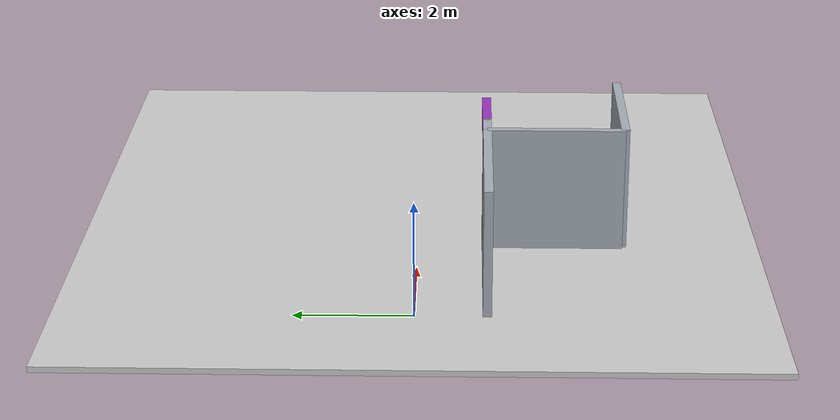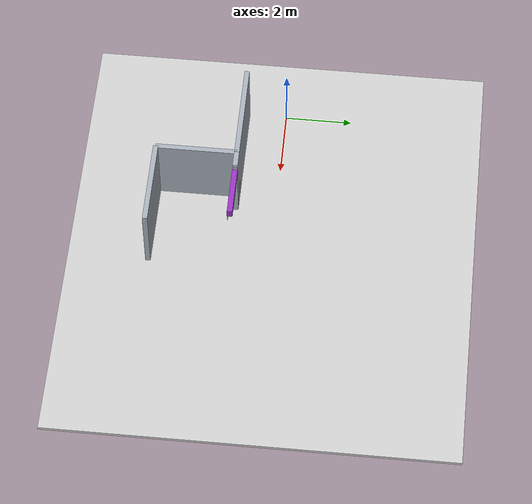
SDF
<sdf version="1.9">
 <world name="default">
  <model name="ground_plane">
   <static>true</static>
   <pose>4.75 0 -0.05 0 0 0</pose>
   <link name="body">
    <collision name="collision"><geometry><box><size>13.5 12 0.1</size></box></geometry></collision>
    <visual name="visual">
     <geometry><box><size>13.5 12 0.1</size></box></geometry>
     <material><ambient>0.8 0.8 0.8 1</ambient><diffuse>0.8 0.8 0.8 1</diffuse></material>
    </visual>
   </link>
  </model>
  <model name="hall_-1_1">
   <static>true</static>
   <pose>1.775 -1.2 1.1 0 0 0</pose>
   <link name="body">
    <collision name="collision"><geometry><box><size>3.55 0.15 2.2</size></box></geometry></collision>
    <visual name="visual">
     <geometry><box><size>3.55 0.15 2.2</size></box></geometry>
     <material><ambient>0.65 0.68 0.72 1</ambient><diffuse>0.65 0.68 0.72 1</diffuse></material>
    </visual>
   </link>
  </model>
  <model name="room_-1_1_-1">
   <static>true</static>
   <pose>3.0 -2.4 1.1 0 0 0</pose>
   <link name="body">
    <collision name="collision"><geometry><box><size>0.15 2.4 2.2</size></box></geometry></collision>
    <visual name="visual">
     <geometry><box><size>0.15 2.4 2.2</size></box></geometry>
     <material><ambient>0.65 0.68 0.72 1</ambient><diffuse>0.65 0.68 0.72 1</diffuse></material>
    </visual>
   </link>
  </model>
  <model name="room_end_-1_1">
   <static>true</static>
   <pose>4.3 -3.5999999999999996 1.1 0 0 0</pose>
   <link name="body">
    <collision name="collision"><geometry><box><size>2.6 0.15 2.2</size></box></geometry></collision>
    <visual name="visual">
     <geometry><box><size>2.6 0.15 2.2</size></box></geometry>
     <material><ambient>0.65 0.68 0.72 1</ambient><diffuse>0.65 0.68 0.72 1</diffuse></material>
    </visual>
   </link>
  </model>
  <model name="jamb_-1_1_-1">
   <static>true</static>
   <pose>3.275 -1.2 1.1 0 0 0</pose>
   <link name="body">
    <collision name="collision"><geometry><box><size>0.55 0.15 2.2</size></box></geometry></collision>
    <visual name="visual">
     <geometry><box><size>0.55 0.15 2.2</size></box></geometry>
     <material><ambient>0.65 0.68 0.72 1</ambient><diffuse>0.65 0.68 0.72 1</diffuse></material>
    </visual>
   </link>
  </model>
  <model name="r3geo_base_r010_right_1_lintel">
   <static>true</static>
   <pose>4.3 -1.2 1.95 0 0 0</pose>
   <link name="body">
    <collision name="collision"><geometry><box><size>1.5 0.16 0.25</size></box></geometry></collision>
    <visual name="visual">
     <geometry><box><size>1.5 0.16 0.25</size></box></geometry>
     <material><ambient>0.6 0.2 0.75 1</ambient><diffuse>0.6 0.2 0.75 1</diffuse></material>
    </visual>
   </link>
  </model>
  <model name="readable_r3geo_base_r010_right_1_entrance_room">
   <static>true</static>
   <pose>4.3 -1.3 1.43 0 0 0</pose>
   <link name="lettering">
    <visual name="backboard">
     <geometry><box><size>1.02 0.018 0.3</size></box></geometry>
     <material>
      <ambient>.015 .015 .015 1</ambient>
      <diffuse>.015 .015 .015 1</diffuse>
      <emissive>.015 .015 .015 1</emissive>
     </material>
     <cast_shadows>false</cast_shadows>
    </visual>
    <visual name="letter_0_0_1">
     <pose>-0.416 -0.014 0.078 0 0 0</pose>
     <geometry><box><size>0.024439999999999996 0.008 0.024439999999999996</size></box></geometry>
     <material>
      <ambient>.96 .96 .96 1</ambient>
      <diffuse>.96 .96 .96 1</diffuse>
      <emissive>.96 .96 .96 1</emissive>
     </material>
     <cast_shadows>false</cast_shadows>
    </visual>
    <visual name="letter_0_0_2">
     <pose>-0.39 -0.014 0.078 0 0 0</pose>
     <geometry><box><size>0.024439999999999996 0.008 0.024439999999999996</size></box></geometry>
     <material>
      <ambient>.96 .96 .96 1</ambient>
      <diffuse>.96 .96 .96 1</diffuse>
      <emissive>.96 .96 .96 1</emissive>
     </material>
     <cast_shadows>false</cast_shadows>
    </visual>
    <visual name="letter_0_0_3">
     <pose>-0.364 -0.014 0.078 0 0 0</pose>
     <geometry><box><size>0.024439999999999996 0.008 0.024439999999999996</size></box></geometry>
     <material>
      <ambient>.96 .96 .96 1</ambient>
      <diffuse>.96 .96 .96 1</diffuse>
      <emissive>.96 .96 .96 1</emissive>
     </material>
     <cast_shadows>false</cast_shadows>
    </visual>
    <visual name="letter_0_1_0">
     <pose>-0.442 -0.014 0.052 0 0 0</pose>
     <geometry><box><size>0.024439999999999996 0.008 0.024439999999999996</size></box></geometry>
     <material>
      <ambient>.96 .96 .96 1</ambient>
      <diffuse>.96 .96 .96 1</diffuse>
      <emissive>.96 .96 .96 1</emissive>
     </material>
     <cast_shadows>false</cast_shadows>
    </visual>
    <visual name="letter_0_1_4">
     <pose>-0.338 -0.014 0.052 0 0 0</pose>
     <geometry><box><size>0.024439999999999996 0.008 0.024439999999999996</size></box></geometry>
     <material>
      <ambient>.96 .96 .96 1</ambient>
      <diffuse>.96 .96 .96 1</diffuse>
      <emissive>.96 .96 .96 1</emissive>
     </material>
     <cast_shadows>false</cast_shadows>
    </visual>
    <visual name="letter_0_2_0">
     <pose>-0.442 -0.014 0.026 0 0 0</pose>
     <geometry><box><size>0.024439999999999996 0.008 0.024439999999999996</size></box></geometry>
     <material>
      <ambient>.96 .96 .96 1</ambient>
      <diffuse>.96 .96 .96 1</diffuse>
      <emissive>.96 .96 .96 1</emissive>
     </material>
     <cast_shadows>false</cast_shadows>
    </visual>
    <visual name="letter_0_2_4">
     <pose>-0.338 -0.014 0.026 0 0 0</pose>
     <geometry><box><size>0.024439999999999996 0.008 0.024439999999999996</size></box></geometry>
     <material>
      <ambient>.96 .96 .96 1</ambient>
      <diffuse>.96 .96 .96 1</diffuse>
      <emissive>.96 .96 .96 1</emissive>
     </material>
     <cast_shadows>false</cast_shadows>
    </visual>
    <visual name="letter_0_3_0">
     <pose>-0.442 -0.014 0 0 0 0</pose>
     <geometry><box><size>0.024439999999999996 0.008 0.024439999999999996</size></box></geometry>
     <material>
      <ambient>.96 .96 .96 1</ambient>
      <diffuse>.96 .96 .96 1</diffuse>
      <emissive>.96 .96 .96 1</emissive>
     </material>
     <cast_shadows>false</cast_shadows>
    </visual>
    <visual name="letter_0_3_4">
     <pose>-0.338 -0.014 0 0 0 0</pose>
     <geometry><box><size>0.024439999999999996 0.008 0.024439999999999996</size></box></geometry>
     <material>
      <ambient>.96 .96 .96 1</ambient>
      <diffuse>.96 .96 .96 1</diffuse>
      <emissive>.96 .96 .96 1</emissive>
     </material>
     <cast_shadows>false</cast_shadows>
    </visual>
    <visual name="letter_0_4_0">
     <pose>-0.442 -0.014 -0.026 0 0 0</pose>
     <geometry><box><size>0.024439999999999996 0.008 0.024439999999999996</size></box></geometry>
     <material>
      <ambient>.96 .96 .96 1</ambient>
      <diffuse>.96 .96 .96 1</diffuse>
      <emissive>.96 .96 .96 1</emissive>
     </material>
     <cast_shadows>false</cast_shadows>
    </visual>
    <visual name="letter_0_4_4">
     <pose>-0.338 -0.014 -0.026 0 0 0</pose>
     <geometry><box><size>0.024439999999999996 0.008 0.024439999999999996</size></box></geometry>
     <material>
      <ambient>.96 .96 .96 1</ambient>
      <diffuse>.96 .96 .96 1</diffuse>
      <emissive>.96 .96 .96 1</emissive>
     </material>
     <cast_shadows>false</cast_shadows>
    </visual>
    <visual name="letter_0_5_0">
     <pose>-0.442 -0.014 -0.052 0 0 0</pose>
     <geometry><box><size>0.024439999999999996 0.008 0.024439999999999996</size></box></geometry>
     <material>
      <ambient>.96 .96 .96 1</ambient>
      <diffuse>.96 .96 .96 1</diffuse>
      <emissive>.96 .96 .96 1</emissive>
     </material>
     <cast_shadows>false</cast_shadows>
    </visual>
    <visual name="letter_0_5_4">
     <pose>-0.338 -0.014 -0.052 0 0 0</pose>
     <geometry><box><size>0.024439999999999996 0.008 0.024439999999999996</size></box></geometry>
     <material>
      <ambient>.96 .96 .96 1</ambient>
      <diffuse>.96 .96 .96 1</diffuse>
      <emissive>.96 .96 .96 1</emissive>
     </material>
     <cast_shadows>false</cast_shadows>
    </visual>
    <visual name="letter_0_6_1">
     <pose>-0.416 -0.014 -0.078 0 0 0</pose>
     <geometry><box><size>0.024439999999999996 0.008 0.024439999999999996</size></box></geometry>
     <material>
      <ambient>.96 .96 .96 1</ambient>
      <diffuse>.96 .96 .96 1</diffuse>
      <emissive>.96 .96 .96 1</emissive>
     </material>
     <cast_shadows>false</cast_shadows>
    </visual>
    <visual name="letter_0_6_2">
     <pose>-0.39 -0.014 -0.078 0 0 0</pose>
     <geometry><box><size>0.024439999999999996 0.008 0.024439999999999996</size></box></geometry>
     <material>
      <ambient>.96 .96 .96 1</ambient>
      <diffuse>.96 .96 .96 1</diffuse>
      <emissive>.96 .96 .96 1</emissive>
     </material>
     <cast_shadows>false</cast_shadows>
    </visual>
    <visual name="letter_0_6_3">
     <pose>-0.364 -0.014 -0.078 0 0 0</pose>
     <geometry><box><size>0.024439999999999996 0.008 0.024439999999999996</size></box></geometry>
     <material>
      <ambient>.96 .96 .96 1</ambient>
      <diffuse>.96 .96 .96 1</diffuse>
      <emissive>.96 .96 .96 1</emissive>
     </material>
     <cast_shadows>false</cast_shadows>
    </visual>
    <visual name="letter_1_0_0">
     <pose>-0.286 -0.014 0.078 0 0 0</pose>
     <geometry><box><size>0.024439999999999996 0.008 0.024439999999999996</size></box></geometry>
     <material>
      <ambient>.96 .96 .96 1</ambient>
      <diffuse>.96 .96 .96 1</diffuse>
      <emissive>.96 .96 .96 1</emissive>
     </material>
     <cast_shadows>false</cast_shadows>
    </visual>
    <visual name="letter_1_0_1">
     <pose>-0.26 -0.014 0.078 0 0 0</pose>
     <geometry><box><size>0.024439999999999996 0.008 0.024439999999999996</size></box></geometry>
     <material>
      <ambient>.96 .96 .96 1</ambient>
      <diffuse>.96 .96 .96 1</diffuse>
      <emissive>.96 .96 .96 1</emissive>
     </material>
     <cast_shadows>false</cast_shadows>
    </visual>
    <visual name="letter_1_0_2">
     <pose>-0.234 -0.014 0.078 0 0 0</pose>
     <geometry><box><size>0.024439999999999996 0.008 0.024439999999999996</size></box></geometry>
     <material>
      <ambient>.96 .96 .96 1</ambient>
      <diffuse>.96 .96 .96 1</diffuse>
      <emissive>.96 .96 .96 1</emissive>
     </material>
     <cast_shadows>false</cast_shadows>
    </visual>
    <visual name="letter_1_0_3">
     <pose>-0.208 -0.014 0.078 0 0 0</pose>
     <geometry><box><size>0.024439999999999996 0.008 0.024439999999999996</size></box></geometry>
     <material>
      <ambient>.96 .96 .96 1</ambient>
      <diffuse>.96 .96 .96 1</diffuse>
      <emissive>.96 .96 .96 1</emissive>
     </material>
     <cast_shadows>false</cast_shadows>
    </visual>
    <visual name="letter_1_0_4">
     <pose>-0.182 -0.014 0.078 0 0 0</pose>
     <geometry><box><size>0.024439999999999996 0.008 0.024439999999999996</size></box></geometry>
     <material>
      <ambient>.96 .96 .96 1</ambient>
      <diffuse>.96 .96 .96 1</diffuse>
      <emissive>.96 .96 .96 1</emissive>
     </material>
     <cast_shadows>false</cast_shadows>
    </visual>
    <visual name="letter_1_1_0">
     <pose>-0.286 -0.014 0.052 0 0 0</pose>
     <geometry><box><size>0.024439999999999996 0.008 0.024439999999999996</size></box></geometry>
     <material>
      <ambient>.96 .96 .96 1</ambient>
      <diffuse>.96 .96 .96 1</diffuse>
      <emissive>.96 .96 .96 1</emissive>
     </material>
     <cast_shadows>false</cast_shadows>
    </visual>
    <visual name="letter_1_2_0">
     <pose>-0.286 -0.014 0.026 0 0 0</pose>
     <geometry><box><size>0.024439999999999996 0.008 0.024439999999999996</size></box></geometry>
     <material>
      <ambient>.96 .96 .96 1</ambient>
      <diffuse>.96 .96 .96 1</diffuse>
      <emissive>.96 .96 .96 1</emissive>
     </material>
     <cast_shadows>false</cast_shadows>
    </visual>
    <visual name="letter_1_3_0">
     <pose>-0.286 -0.014 0 0 0 0</pose>
     <geometry><box><size>0.024439999999999996 0.008 0.024439999999999996</size></box></geometry>
     <material>
      <ambient>.96 .96 .96 1</ambient>
      <diffuse>.96 .96 .96 1</diffuse>
      <emissive>.96 .96 .96 1</emissive>
     </material>
     <cast_shadows>false</cast_shadows>
    </visual>
    <visual name="letter_1_3_1">
     <pose>-0.26 -0.014 0 0 0 0</pose>
     <geometry><box><size>0.024439999999999996 0.008 0.024439999999999996</size></box></geometry>
     <material>
      <ambient>.96 .96 .96 1</ambient>
      <diffuse>.96 .96 .96 1</diffuse>
      <emissive>.96 .96 .96 1</emissive>
     </material>
     <cast_shadows>false</cast_shadows>
    </visual>
    <visual name="letter_1_3_2">
     <pose>-0.234 -0.014 0 0 0 0</pose>
     <geometry><box><size>0.024439999999999996 0.008 0.024439999999999996</size></box></geometry>
     <material>
      <ambient>.96 .96 .96 1</ambient>
      <diffuse>.96 .96 .96 1</diffuse>
      <emissive>.96 .96 .96 1</emissive>
     </material>
     <cast_shadows>false</cast_shadows>
    </visual>
    <visual name="letter_1_3_3">
     <pose>-0.208 -0.014 0 0 0 0</pose>
     <geometry><box><size>0.024439999999999996 0.008 0.024439999999999996</size></box></geometry>
     <material>
      <ambient>.96 .96 .96 1</ambient>
      <diffuse>.96 .96 .96 1</diffuse>
      <emissive>.96 .96 .96 1</emissive>
     </material>
     <cast_shadows>false</cast_shadows>
    </visual>
    <visual name="letter_1_4_0">
     <pose>-0.286 -0.014 -0.026 0 0 0</pose>
     <geometry><box><size>0.024439999999999996 0.008 0.024439999999999996</size></box></geometry>
     <material>
      <ambient>.96 .96 .96 1</ambient>
      <diffuse>.96 .96 .96 1</diffuse>
      <emissive>.96 .96 .96 1</emissive>
     </material>
     <cast_shadows>false</cast_shadows>
    </visual>
    <visual name="letter_1_5_0">
     <pose>-0.286 -0.014 -0.052 0 0 0</pose>
     <geometry><box><size>0.024439999999999996 0.008 0.024439999999999996</size></box></geometry>
     <material>
      <ambient>.96 .96 .96 1</ambient>
      <diffuse>.96 .96 .96 1</diffuse>
      <emissive>.96 .96 .96 1</emissive>
     </material>
     <cast_shadows>false</cast_shadows>
    </visual>
    <visual name="letter_1_6_0">
     <pose>-0.286 -0.014 -0.078 0 0 0</pose>
     <geometry><box><size>0.024439999999999996 0.008 0.024439999999999996</size></box></geometry>
     <material>
      <ambient>.96 .96 .96 1</ambient>
      <diffuse>.96 .96 .96 1</diffuse>
      <emissive>.96 .96 .96 1</emissive>
     </material>
     <cast_shadows>false</cast_shadows>
    </visual>
    <visual name="letter_2_0_0">
     <pose>-0.13 -0.014 0.078 0 0 0</pose>
     <geometry><box><size>0.024439999999999996 0.008 0.024439999999999996</size></box></geometry>
     <material>
      <ambient>.96 .96 .96 1</ambient>
      <diffuse>.96 .96 .96 1</diffuse>
      <emissive>.96 .96 .96 1</emissive>
     </material>
     <cast_shadows>false</cast_shadows>
    </visual>
    <visual name="letter_2_0_1">
     <pose>-0.104 -0.014 0.078 0 0 0</pose>
     <geometry><box><size>0.024439999999999996 0.008 0.024439999999999996</size></box></geometry>
     <material>
      <ambient>.96 .96 .96 1</ambient>
      <diffuse>.96 .96 .96 1</diffuse>
      <emissive>.96 .96 .96 1</emissive>
     </material>
     <cast_shadows>false</cast_shadows>
    </visual>
    <visual name="letter_2_0_2">
     <pose>-0.078 -0.014 0.078 0 0 0</pose>
     <geometry><box><size>0.024439999999999996 0.008 0.024439999999999996</size></box></geometry>
     <material>
      <ambient>.96 .96 .96 1</ambient>
      <diffuse>.96 .96 .96 1</diffuse>
      <emissive>.96 .96 .96 1</emissive>
     </material>
     <cast_shadows>false</cast_shadows>
    </visual>
    <visual name="letter_2_0_3">
     <pose>-0.052 -0.014 0.078 0 0 0</pose>
     <geometry><box><size>0.024439999999999996 0.008 0.024439999999999996</size></box></geometry>
     <material>
      <ambient>.96 .96 .96 1</ambient>
      <diffuse>.96 .96 .96 1</diffuse>
      <emissive>.96 .96 .96 1</emissive>
     </material>
     <cast_shadows>false</cast_shadows>
    </visual>
    <visual name="letter_2_0_4">
     <pose>-0.026 -0.014 0.078 0 0 0</pose>
     <geometry><box><size>0.024439999999999996 0.008 0.024439999999999996</size></box></geometry>
     <material>
      <ambient>.96 .96 .96 1</ambient>
      <diffuse>.96 .96 .96 1</diffuse>
      <emissive>.96 .96 .96 1</emissive>
     </material>
     <cast_shadows>false</cast_shadows>
    </visual>
    <visual name="letter_2_1_0">
     <pose>-0.13 -0.014 0.052 0 0 0</pose>
     <geometry><box><size>0.024439999999999996 0.008 0.024439999999999996</size></box></geometry>
     <material>
      <ambient>.96 .96 .96 1</ambient>
      <diffuse>.96 .96 .96 1</diffuse>
      <emissive>.96 .96 .96 1</emissive>
     </material>
     <cast_shadows>false</cast_shadows>
    </visual>
    <visual name="letter_2_2_0">
     <pose>-0.13 -0.014 0.026 0 0 0</pose>
     <geometry><box><size>0.024439999999999996 0.008 0.024439999999999996</size></box></geometry>
     <material>
      <ambient>.96 .96 .96 1</ambient>
      <diffuse>.96 .96 .96 1</diffuse>
      <emissive>.96 .96 .96 1</emissive>
     </material>
     <cast_shadows>false</cast_shadows>
    </visual>
    <visual name="letter_2_3_0">
     <pose>-0.13 -0.014 0 0 0 0</pose>
     <geometry><box><size>0.024439999999999996 0.008 0.024439999999999996</size></box></geometry>
     <material>
      <ambient>.96 .96 .96 1</ambient>
      <diffuse>.96 .96 .96 1</diffuse>
      <emissive>.96 .96 .96 1</emissive>
     </material>
     <cast_shadows>false</cast_shadows>
    </visual>
    <visual name="letter_2_3_1">
     <pose>-0.104 -0.014 0 0 0 0</pose>
     <geometry><box><size>0.024439999999999996 0.008 0.024439999999999996</size></box></geometry>
     <material>
      <ambient>.96 .96 .96 1</ambient>
      <diffuse>.96 .96 .96 1</diffuse>
      <emissive>.96 .96 .96 1</emissive>
     </material>
     <cast_shadows>false</cast_shadows>
    </visual>
    <visual name="letter_2_3_2">
     <pose>-0.078 -0.014 0 0 0 0</pose>
     <geometry><box><size>0.024439999999999996 0.008 0.024439999999999996</size></box></geometry>
     <material>
      <ambient>.96 .96 .96 1</ambient>
      <diffuse>.96 .96 .96 1</diffuse>
      <emissive>.96 .96 .96 1</emissive>
     </material>
     <cast_shadows>false</cast_shadows>
    </visual>
    <visual name="letter_2_3_3">
     <pose>-0.052 -0.014 0 0 0 0</pose>
     <geometry><box><size>0.024439999999999996 0.008 0.024439999999999996</size></box></geometry>
     <material>
      <ambient>.96 .96 .96 1</ambient>
      <diffuse>.96 .96 .96 1</diffuse>
      <emissive>.96 .96 .96 1</emissive>
     </material>
     <cast_shadows>false</cast_shadows>
    </visual>
    <visual name="letter_2_4_0">
     <pose>-0.13 -0.014 -0.026 0 0 0</pose>
     <geometry><box><size>0.024439999999999996 0.008 0.024439999999999996</size></box></geometry>
     <material>
      <ambient>.96 .96 .96 1</ambient>
      <diffuse>.96 .96 .96 1</diffuse>
      <emissive>.96 .96 .96 1</emissive>
     </material>
     <cast_shadows>false</cast_shadows>
    </visual>
    <visual name="letter_2_5_0">
     <pose>-0.13 -0.014 -0.052 0 0 0</pose>
     <geometry><box><size>0.024439999999999996 0.008 0.024439999999999996</size></box></geometry>
     <material>
      <ambient>.96 .96 .96 1</ambient>
      <diffuse>.96 .96 .96 1</diffuse>
      <emissive>.96 .96 .96 1</emissive>
     </material>
     <cast_shadows>false</cast_shadows>
    </visual>
    <visual name="letter_2_6_0">
     <pose>-0.13 -0.014 -0.078 0 0 0</pose>
     <geometry><box><size>0.024439999999999996 0.008 0.024439999999999996</size></box></geometry>
     <material>
      <ambient>.96 .96 .96 1</ambient>
      <diffuse>.96 .96 .96 1</diffuse>
      <emissive>.96 .96 .96 1</emissive>
     </material>
     <cast_shadows>false</cast_shadows>
    </visual>
    <visual name="letter_3_0_0">
     <pose>0.026 -0.014 0.078 0 0 0</pose>
     <geometry><box><size>0.024439999999999996 0.008 0.024439999999999996</size></box></geometry>
     <material>
      <ambient>.96 .96 .96 1</ambient>
      <diffuse>.96 .96 .96 1</diffuse>
      <emissive>.96 .96 .96 1</emissive>
     </material>
     <cast_shadows>false</cast_shadows>
    </visual>
    <visual name="letter_3_0_1">
     <pose>0.052 -0.014 0.078 0 0 0</pose>
     <geometry><box><size>0.024439999999999996 0.008 0.024439999999999996</size></box></geometry>
     <material>
      <ambient>.96 .96 .96 1</ambient>
      <diffuse>.96 .96 .96 1</diffuse>
      <emissive>.96 .96 .96 1</emissive>
     </material>
     <cast_shadows>false</cast_shadows>
    </visual>
    <visual name="letter_3_0_2">
     <pose>0.078 -0.014 0.078 0 0 0</pose>
     <geometry><box><size>0.024439999999999996 0.008 0.024439999999999996</size></box></geometry>
     <material>
      <ambient>.96 .96 .96 1</ambient>
      <diffuse>.96 .96 .96 1</diffuse>
      <emissive>.96 .96 .96 1</emissive>
     </material>
     <cast_shadows>false</cast_shadows>
    </visual>
    <visual name="letter_3_0_3">
     <pose>0.104 -0.014 0.078 0 0 0</pose>
     <geometry><box><size>0.024439999999999996 0.008 0.024439999999999996</size></box></geometry>
     <material>
      <ambient>.96 .96 .96 1</ambient>
      <diffuse>.96 .96 .96 1</diffuse>
      <emissive>.96 .96 .96 1</emissive>
     </material>
     <cast_shadows>false</cast_shadows>
    </visual>
    <visual name="letter_3_0_4">
     <pose>0.13 -0.014 0.078 0 0 0</pose>
     <geometry><box><size>0.024439999999999996 0.008 0.024439999999999996</size></box></geometry>
     <material>
      <ambient>.96 .96 .96 1</ambient>
      <diffuse>.96 .96 .96 1</diffuse>
      <emissive>.96 .96 .96 1</emissive>
     </material>
     <cast_shadows>false</cast_shadows>
    </visual>
    <visual name="letter_3_1_2">
     <pose>0.078 -0.014 0.052 0 0 0</pose>
     <geometry><box><size>0.024439999999999996 0.008 0.024439999999999996</size></box></geometry>
     <material>
      <ambient>.96 .96 .96 1</ambient>
      <diffuse>.96 .96 .96 1</diffuse>
      <emissive>.96 .96 .96 1</emissive>
     </material>
     <cast_shadows>false</cast_shadows>
    </visual>
    <visual name="letter_3_2_2">
     <pose>0.078 -0.014 0.026 0 0 0</pose>
     <geometry><box><size>0.024439999999999996 0.008 0.024439999999999996</size></box></geometry>
     <material>
      <ambient>.96 .96 .96 1</ambient>
      <diffuse>.96 .96 .96 1</diffuse>
      <emissive>.96 .96 .96 1</emissive>
     </material>
     <cast_shadows>false</cast_shadows>
    </visual>
    <visual name="letter_3_3_2">
     <pose>0.078 -0.014 0 0 0 0</pose>
     <geometry><box><size>0.024439999999999996 0.008 0.024439999999999996</size></box></geometry>
     <material>
      <ambient>.96 .96 .96 1</ambient>
      <diffuse>.96 .96 .96 1</diffuse>
      <emissive>.96 .96 .96 1</emissive>
     </material>
     <cast_shadows>false</cast_shadows>
    </visual>
    <visual name="letter_3_4_2">
     <pose>0.078 -0.014 -0.026 0 0 0</pose>
     <geometry><box><size>0.024439999999999996 0.008 0.024439999999999996</size></box></geometry>
     <material>
      <ambient>.96 .96 .96 1</ambient>
      <diffuse>.96 .96 .96 1</diffuse>
      <emissive>.96 .96 .96 1</emissive>
     </material>
     <cast_shadows>false</cast_shadows>
    </visual>
    <visual name="letter_3_5_2">
     <pose>0.078 -0.014 -0.052 0 0 0</pose>
     <geometry><box><size>0.024439999999999996 0.008 0.024439999999999996</size></box></geometry>
     <material>
      <ambient>.96 .96 .96 1</ambient>
      <diffuse>.96 .96 .96 1</diffuse>
      <emissive>.96 .96 .96 1</emissive>
     </material>
     <cast_shadows>false</cast_shadows>
    </visual>
    <visual name="letter_3_6_0">
     <pose>0.026 -0.014 -0.078 0 0 0</pose>
     <geometry><box><size>0.024439999999999996 0.008 0.024439999999999996</size></box></geometry>
     <material>
      <ambient>.96 .96 .96 1</ambient>
      <diffuse>.96 .96 .96 1</diffuse>
      <emissive>.96 .96 .96 1</emissive>
     </material>
     <cast_shadows>false</cast_shadows>
    </visual>
    <visual name="letter_3_6_1">
     <pose>0.052 -0.014 -0.078 0 0 0</pose>
     <geometry><box><size>0.024439999999999996 0.008 0.024439999999999996</size></box></geometry>
     <material>
      <ambient>.96 .96 .96 1</ambient>
      <diffuse>.96 .96 .96 1</diffuse>
      <emissive>.96 .96 .96 1</emissive>
     </material>
     <cast_shadows>false</cast_shadows>
    </visual>
    <visual name="letter_3_6_2">
     <pose>0.078 -0.014 -0.078 0 0 0</pose>
     <geometry><box><size>0.024439999999999996 0.008 0.024439999999999996</size></box></geometry>
     <material>
      <ambient>.96 .96 .96 1</ambient>
      <diffuse>.96 .96 .96 1</diffuse>
      <emissive>.96 .96 .96 1</emissive>
     </material>
     <cast_shadows>false</cast_shadows>
    </visual>
    <visual name="letter_3_6_3">
     <pose>0.104 -0.014 -0.078 0 0 0</pose>
     <geometry><box><size>0.024439999999999996 0.008 0.024439999999999996</size></box></geometry>
     <material>
      <ambient>.96 .96 .96 1</ambient>
      <diffuse>.96 .96 .96 1</diffuse>
      <emissive>.96 .96 .96 1</emissive>
     </material>
     <cast_shadows>false</cast_shadows>
    </visual>
    <visual name="letter_3_6_4">
     <pose>0.13 -0.014 -0.078 0 0 0</pose>
     <geometry><box><size>0.024439999999999996 0.008 0.024439999999999996</size></box></geometry>
     <material>
      <ambient>.96 .96 .96 1</ambient>
      <diffuse>.96 .96 .96 1</diffuse>
      <emissive>.96 .96 .96 1</emissive>
     </material>
     <cast_shadows>false</cast_shadows>
    </visual>
    <visual name="letter_4_0_1">
     <pose>0.208 -0.014 0.078 0 0 0</pose>
     <geometry><box><size>0.024439999999999996 0.008 0.024439999999999996</size></box></geometry>
     <material>
      <ambient>.96 .96 .96 1</ambient>
      <diffuse>.96 .96 .96 1</diffuse>
      <emissive>.96 .96 .96 1</emissive>
     </material>
     <cast_shadows>false</cast_shadows>
    </visual>
    <visual name="letter_4_0_2">
     <pose>0.234 -0.014 0.078 0 0 0</pose>
     <geometry><box><size>0.024439999999999996 0.008 0.024439999999999996</size></box></geometry>
     <material>
      <ambient>.96 .96 .96 1</ambient>
      <diffuse>.96 .96 .96 1</diffuse>
      <emissive>.96 .96 .96 1</emissive>
     </material>
     <cast_shadows>false</cast_shadows>
    </visual>
    <visual name="letter_4_0_3">
     <pose>0.26 -0.014 0.078 0 0 0</pose>
     <geometry><box><size>0.024439999999999996 0.008 0.024439999999999996</size></box></geometry>
     <material>
      <ambient>.96 .96 .96 1</ambient>
      <diffuse>.96 .96 .96 1</diffuse>
      <emissive>.96 .96 .96 1</emissive>
     </material>
     <cast_shadows>false</cast_shadows>
    </visual>
    <visual name="letter_4_0_4">
     <pose>0.286 -0.014 0.078 0 0 0</pose>
     <geometry><box><size>0.024439999999999996 0.008 0.024439999999999996</size></box></geometry>
     <material>
      <ambient>.96 .96 .96 1</ambient>
      <diffuse>.96 .96 .96 1</diffuse>
      <emissive>.96 .96 .96 1</emissive>
     </material>
     <cast_shadows>false</cast_shadows>
    </visual>
    <visual name="letter_4_1_0">
     <pose>0.182 -0.014 0.052 0 0 0</pose>
     <geometry><box><size>0.024439999999999996 0.008 0.024439999999999996</size></box></geometry>
     <material>
      <ambient>.96 .96 .96 1</ambient>
      <diffuse>.96 .96 .96 1</diffuse>
      <emissive>.96 .96 .96 1</emissive>
     </material>
     <cast_shadows>false</cast_shadows>
    </visual>
    <visual name="letter_4_2_0">
     <pose>0.182 -0.014 0.026 0 0 0</pose>
     <geometry><box><size>0.024439999999999996 0.008 0.024439999999999996</size></box></geometry>
     <material>
      <ambient>.96 .96 .96 1</ambient>
      <diffuse>.96 .96 .96 1</diffuse>
      <emissive>.96 .96 .96 1</emissive>
     </material>
     <cast_shadows>false</cast_shadows>
    </visual>
    <visual name="letter_4_3_0">
     <pose>0.182 -0.014 0 0 0 0</pose>
     <geometry><box><size>0.024439999999999996 0.008 0.024439999999999996</size></box></geometry>
     <material>
      <ambient>.96 .96 .96 1</ambient>
      <diffuse>.96 .96 .96 1</diffuse>
      <emissive>.96 .96 .96 1</emissive>
     </material>
     <cast_shadows>false</cast_shadows>
    </visual>
    <visual name="letter_4_4_0">
     <pose>0.182 -0.014 -0.026 0 0 0</pose>
     <geometry><box><size>0.024439999999999996 0.008 0.024439999999999996</size></box></geometry>
     <material>
      <ambient>.96 .96 .96 1</ambient>
      <diffuse>.96 .96 .96 1</diffuse>
      <emissive>.96 .96 .96 1</emissive>
     </material>
     <cast_shadows>false</cast_shadows>
    </visual>
    <visual name="letter_4_5_0">
     <pose>0.182 -0.014 -0.052 0 0 0</pose>
     <geometry><box><size>0.024439999999999996 0.008 0.024439999999999996</size></box></geometry>
     <material>
      <ambient>.96 .96 .96 1</ambient>
      <diffuse>.96 .96 .96 1</diffuse>
      <emissive>.96 .96 .96 1</emissive>
     </material>
     <cast_shadows>false</cast_shadows>
    </visual>
    <visual name="letter_4_6_1">
     <pose>0.208 -0.014 -0.078 0 0 0</pose>
     <geometry><box><size>0.024439999999999996 0.008 0.024439999999999996</size></box></geometry>
     <material>
      <ambient>.96 .96 .96 1</ambient>
      <diffuse>.96 .96 .96 1</diffuse>
      <emissive>.96 .96 .96 1</emissive>
     </material>
     <cast_shadows>false</cast_shadows>
    </visual>
    <visual name="letter_4_6_2">
     <pose>0.234 -0.014 -0.078 0 0 0</pose>
     <geometry><box><size>0.024439999999999996 0.008 0.024439999999999996</size></box></geometry>
     <material>
      <ambient>.96 .96 .96 1</ambient>
      <diffuse>.96 .96 .96 1</diffuse>
      <emissive>.96 .96 .96 1</emissive>
     </material>
     <cast_shadows>false</cast_shadows>
    </visual>
    <visual name="letter_4_6_3">
     <pose>0.26 -0.014 -0.078 0 0 0</pose>
     <geometry><box><size>0.024439999999999996 0.008 0.024439999999999996</size></box></geometry>
     <material>
      <ambient>.96 .96 .96 1</ambient>
      <diffuse>.96 .96 .96 1</diffuse>
      <emissive>.96 .96 .96 1</emissive>
     </material>
     <cast_shadows>false</cast_shadows>
    </visual>
    <visual name="letter_4_6_4">
     <pose>0.286 -0.014 -0.078 0 0 0</pose>
     <geometry><box><size>0.024439999999999996 0.008 0.024439999999999996</size></box></geometry>
     <material>
      <ambient>.96 .96 .96 1</ambient>
      <diffuse>.96 .96 .96 1</diffuse>
      <emissive>.96 .96 .96 1</emissive>
     </material>
     <cast_shadows>false</cast_shadows>
    </visual>
    <visual name="letter_5_0_0">
     <pose>0.338 -0.014 0.078 0 0 0</pose>
     <geometry><box><size>0.024439999999999996 0.008 0.024439999999999996</size></box></geometry>
     <material>
      <ambient>.96 .96 .96 1</ambient>
      <diffuse>.96 .96 .96 1</diffuse>
      <emissive>.96 .96 .96 1</emissive>
     </material>
     <cast_shadows>false</cast_shadows>
    </visual>
    <visual name="letter_5_0_1">
     <pose>0.364 -0.014 0.078 0 0 0</pose>
     <geometry><box><size>0.024439999999999996 0.008 0.024439999999999996</size></box></geometry>
     <material>
      <ambient>.96 .96 .96 1</ambient>
      <diffuse>.96 .96 .96 1</diffuse>
      <emissive>.96 .96 .96 1</emissive>
     </material>
     <cast_shadows>false</cast_shadows>
    </visual>
    <visual name="letter_5_0_2">
     <pose>0.39 -0.014 0.078 0 0 0</pose>
     <geometry><box><size>0.024439999999999996 0.008 0.024439999999999996</size></box></geometry>
     <material>
      <ambient>.96 .96 .96 1</ambient>
      <diffuse>.96 .96 .96 1</diffuse>
      <emissive>.96 .96 .96 1</emissive>
     </material>
     <cast_shadows>false</cast_shadows>
    </visual>
    <visual name="letter_5_0_3">
     <pose>0.416 -0.014 0.078 0 0 0</pose>
     <geometry><box><size>0.024439999999999996 0.008 0.024439999999999996</size></box></geometry>
     <material>
      <ambient>.96 .96 .96 1</ambient>
      <diffuse>.96 .96 .96 1</diffuse>
      <emissive>.96 .96 .96 1</emissive>
     </material>
     <cast_shadows>false</cast_shadows>
    </visual>
    <visual name="letter_5_0_4">
     <pose>0.442 -0.014 0.078 0 0 0</pose>
     <geometry><box><size>0.024439999999999996 0.008 0.024439999999999996</size></box></geometry>
     <material>
      <ambient>.96 .96 .96 1</ambient>
      <diffuse>.96 .96 .96 1</diffuse>
      <emissive>.96 .96 .96 1</emissive>
     </material>
     <cast_shadows>false</cast_shadows>
    </visual>
    <visual name="letter_5_1_0">
     <pose>0.338 -0.014 0.052 0 0 0</pose>
     <geometry><box><size>0.024439999999999996 0.008 0.024439999999999996</size></box></geometry>
     <material>
      <ambient>.96 .96 .96 1</ambient>
      <diffuse>.96 .96 .96 1</diffuse>
      <emissive>.96 .96 .96 1</emissive>
     </material>
     <cast_shadows>false</cast_shadows>
    </visual>
    <visual name="letter_5_2_0">
     <pose>0.338 -0.014 0.026 0 0 0</pose>
     <geometry><box><size>0.024439999999999996 0.008 0.024439999999999996</size></box></geometry>
     <material>
      <ambient>.96 .96 .96 1</ambient>
      <diffuse>.96 .96 .96 1</diffuse>
      <emissive>.96 .96 .96 1</emissive>
     </material>
     <cast_shadows>false</cast_shadows>
    </visual>
    <visual name="letter_5_3_0">
     <pose>0.338 -0.014 0 0 0 0</pose>
     <geometry><box><size>0.024439999999999996 0.008 0.024439999999999996</size></box></geometry>
     <material>
      <ambient>.96 .96 .96 1</ambient>
      <diffuse>.96 .96 .96 1</diffuse>
      <emissive>.96 .96 .96 1</emissive>
     </material>
     <cast_shadows>false</cast_shadows>
    </visual>
    <visual name="letter_5_3_1">
     <pose>0.364 -0.014 0 0 0 0</pose>
     <geometry><box><size>0.024439999999999996 0.008 0.024439999999999996</size></box></geometry>
     <material>
      <ambient>.96 .96 .96 1</ambient>
      <diffuse>.96 .96 .96 1</diffuse>
      <emissive>.96 .96 .96 1</emissive>
     </material>
     <cast_shadows>false</cast_shadows>
    </visual>
    <visual name="letter_5_3_2">
     <pose>0.39 -0.014 0 0 0 0</pose>
     <geometry><box><size>0.024439999999999996 0.008 0.024439999999999996</size></box></geometry>
     <material>
      <ambient>.96 .96 .96 1</ambient>
      <diffuse>.96 .96 .96 1</diffuse>
      <emissive>.96 .96 .96 1</emissive>
     </material>
     <cast_shadows>false</cast_shadows>
    </visual>
    <visual name="letter_5_3_3">
     <pose>0.416 -0.014 0 0 0 0</pose>
     <geometry><box><size>0.024439999999999996 0.008 0.024439999999999996</size></box></geometry>
     <material>
      <ambient>.96 .96 .96 1</ambient>
      <diffuse>.96 .96 .96 1</diffuse>
      <emissive>.96 .96 .96 1</emissive>
     </material>
     <cast_shadows>false</cast_shadows>
    </visual>
    <visual name="letter_5_4_0">
     <pose>0.338 -0.014 -0.026 0 0 0</pose>
     <geometry><box><size>0.024439999999999996 0.008 0.024439999999999996</size></box></geometry>
     <material>
      <ambient>.96 .96 .96 1</ambient>
      <diffuse>.96 .96 .96 1</diffuse>
      <emissive>.96 .96 .96 1</emissive>
     </material>
     <cast_shadows>false</cast_shadows>
    </visual>
    <visual name="letter_5_5_0">
     <pose>0.338 -0.014 -0.052 0 0 0</pose>
     <geometry><box><size>0.024439999999999996 0.008 0.024439999999999996</size></box></geometry>
     <material>
      <ambient>.96 .96 .96 1</ambient>
      <diffuse>.96 .96 .96 1</diffuse>
      <emissive>.96 .96 .96 1</emissive>
     </material>
     <cast_shadows>false</cast_shadows>
    </visual>
    <visual name="letter_5_6_0">
     <pose>0.338 -0.014 -0.078 0 0 0</pose>
     <geometry><box><size>0.024439999999999996 0.008 0.024439999999999996</size></box></geometry>
     <material>
      <ambient>.96 .96 .96 1</ambient>
      <diffuse>.96 .96 .96 1</diffuse>
      <emissive>.96 .96 .96 1</emissive>
     </material>
     <cast_shadows>false</cast_shadows>
    </visual>
    <visual name="letter_5_6_1">
     <pose>0.364 -0.014 -0.078 0 0 0</pose>
     <geometry><box><size>0.024439999999999996 0.008 0.024439999999999996</size></box></geometry>
     <material>
      <ambient>.96 .96 .96 1</ambient>
      <diffuse>.96 .96 .96 1</diffuse>
      <emissive>.96 .96 .96 1</emissive>
     </material>
     <cast_shadows>false</cast_shadows>
    </visual>
    <visual name="letter_5_6_2">
     <pose>0.39 -0.014 -0.078 0 0 0</pose>
     <geometry><box><size>0.024439999999999996 0.008 0.024439999999999996</size></box></geometry>
     <material>
      <ambient>.96 .96 .96 1</ambient>
      <diffuse>.96 .96 .96 1</diffuse>
      <emissive>.96 .96 .96 1</emissive>
     </material>
     <cast_shadows>false</cast_shadows>
    </visual>
    <visual name="letter_5_6_3">
     <pose>0.416 -0.014 -0.078 0 0 0</pose>
     <geometry><box><size>0.024439999999999996 0.008 0.024439999999999996</size></box></geometry>
     <material>
      <ambient>.96 .96 .96 1</ambient>
      <diffuse>.96 .96 .96 1</diffuse>
      <emissive>.96 .96 .96 1</emissive>
     </material>
     <cast_shadows>false</cast_shadows>
    </visual>
    <visual name="letter_5_6_4">
     <pose>0.442 -0.014 -0.078 0 0 0</pose>
     <geometry><box><size>0.024439999999999996 0.008 0.024439999999999996</size></box></geometry>
     <material>
      <ambient>.96 .96 .96 1</ambient>
      <diffuse>.96 .96 .96 1</diffuse>
      <emissive>.96 .96 .96 1</emissive>
     </material>
     <cast_shadows>false</cast_shadows>
    </visual>
   </link>
  </model>
 </world>
</sdf>
